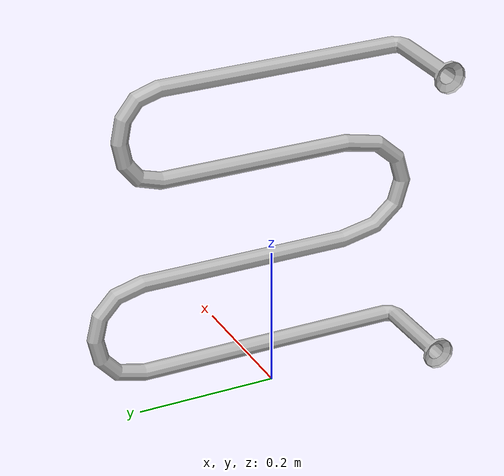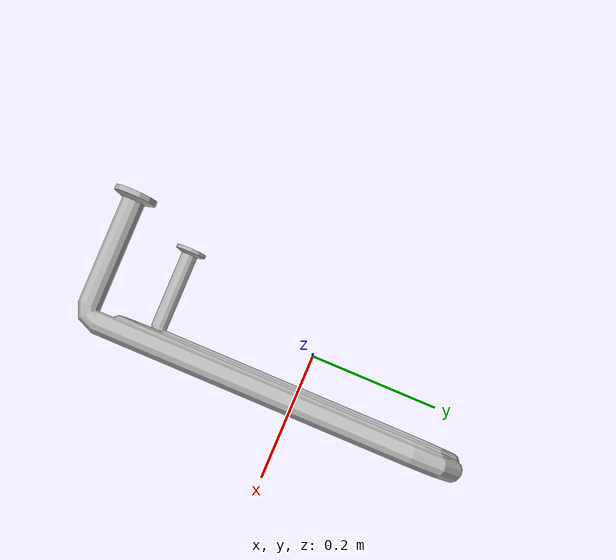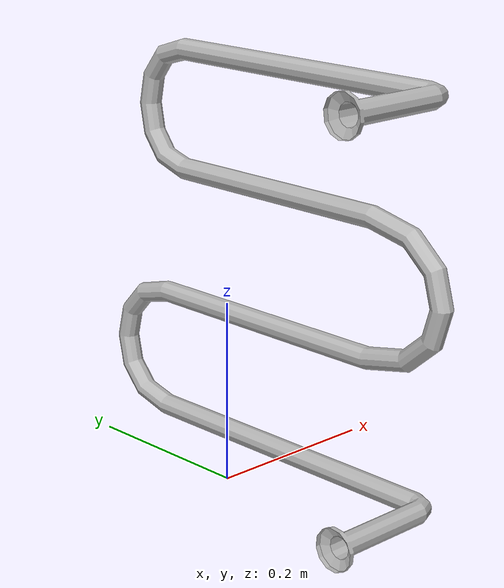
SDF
<?xml version='1.0'?>
<sdf version='1.4'>
  <model name='499'>
    <pose>0 0 0 0 0 0</pose>
    <static>true</static>
    <link name='link'>
      <collision name='collision'>
        <pose>0 0 0 0 0 0</pose>
        <geometry>
          <box>
            <size>0.15 0.499608 2</size>
          </box>
        </geometry>
      </collision>
      <visual name='visual'>
        <pose>0 0 0 0 0 0</pose>
        <geometry>
          <mesh><uri>model://499/499.dae</uri></mesh>
        </geometry>
      </visual>
    </link>
  </model>
</sdf>
